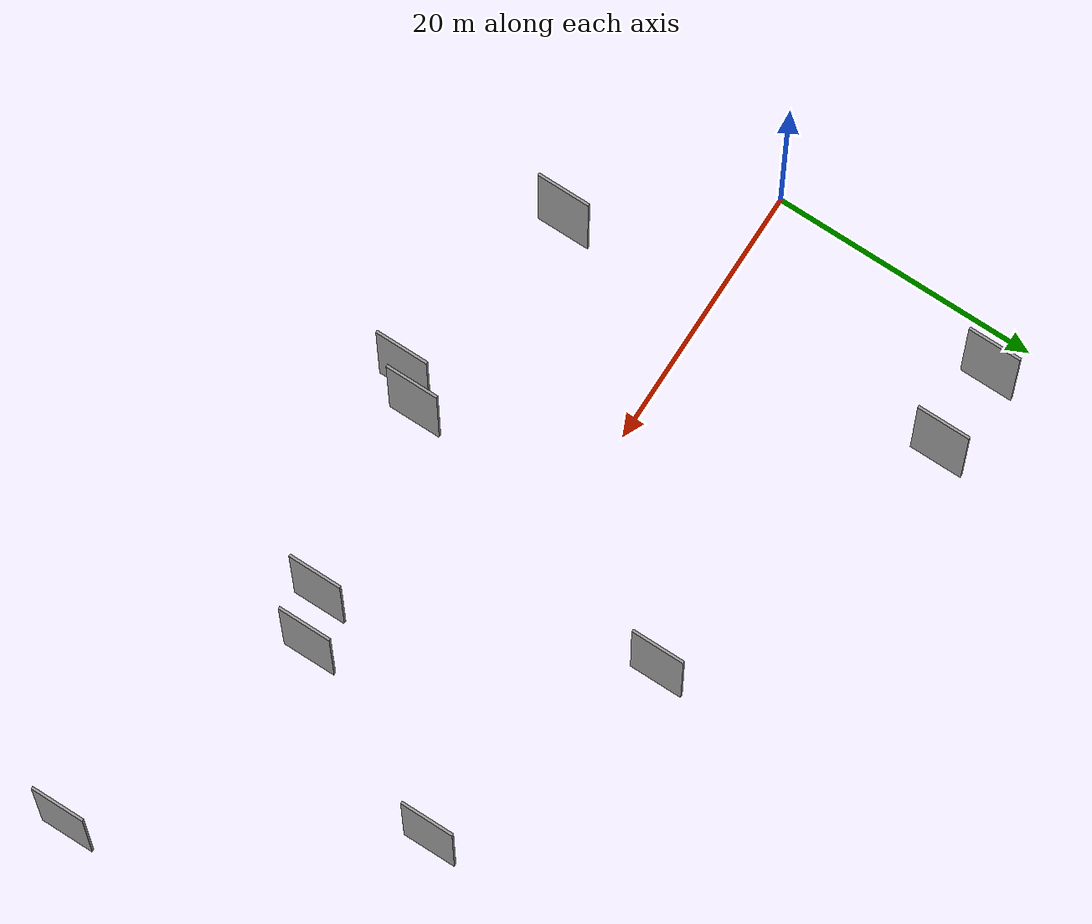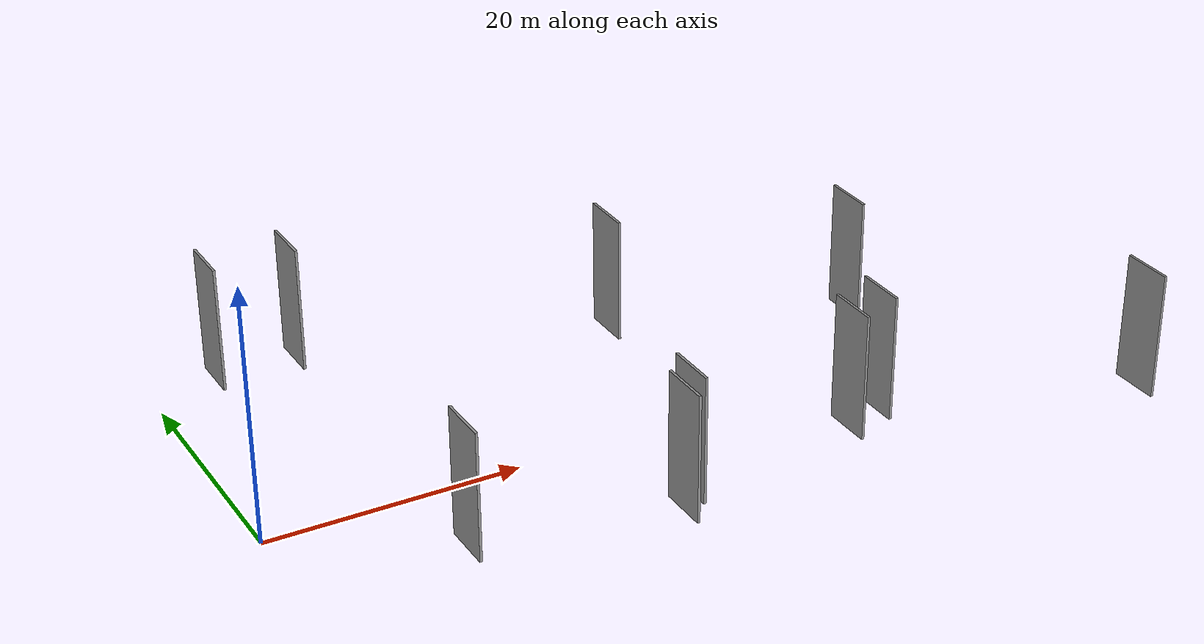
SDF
<sdf version="1.6">
 <world name="default">
  <scene>
   <sky><clouds><speed>12</speed></clouds></sky>
   <ambient>0.4 0.4 0.4 1</ambient>
   <background>0.7 0.7 0.7 1</background>
   <shadows>1</shadows>
  </scene>
  <gravity>0 0 -9.8066</gravity>
  <magnetic_field>6e-06 2.3e-05 -4.2e-05</magnetic_field>
  <physics default="0" name="default_physics" type="ode">
   <ode>
    <solver>
     <type>quick</type>
     <iters>10</iters>
     <sor>1.0</sor>
     <use_dynamic_moi_rescaling>0</use_dynamic_moi_rescaling>
    </solver>
    <constraints>
     <cfm>0</cfm>
     <erp>0.2</erp>
     <contact_max_correcting_vel>100</contact_max_correcting_vel>
     <contact_surface_layer>0.001</contact_surface_layer>
    </constraints>
   </ode>
   <max_step_size>0.004</max_step_size>
   <real_time_factor>1</real_time_factor>
   <real_time_update_rate>250</real_time_update_rate>
  </physics>
  <light name="sun" type="directional">
   <pose>0 0 10 0 0 0</pose>
   <diffuse>0.8 0.8 0.8 1</diffuse>
   <specular>0.2 0.2 0.2 1</specular>
   <attenuation>
    <range>1000</range>
    <constant>0.9</constant>
    <linear>0.01</linear>
    <quadratic>0.001</quadratic>
   </attenuation>
   <direction>-0.5 0.1 -0.9</direction>
  </light>
  <model name="grey_wall_1">
   <static>1</static>
   <pose>27.2210 -12.0549 2.5 0.000000 0.000000 1.570796</pose>
   <link name="link">
    <pose>0 0 5.00 0 0 0</pose>
    <collision name="collision"><geometry><box><size>4.00 0.2 10.00</size></box></geometry></collision>
    <visual name="visual">
     <cast_shadows>0</cast_shadows>
     <geometry><box><size>4.00 0.2 10.00</size></box></geometry>
     <material>
      <script>
       <uri>model://grey_wall/materials/scripts</uri>
       <uri>model://grey_wall/materials/textures</uri>
       <name>vrc/grey_wall</name>
      </script>
     </material>
    </visual>
   </link>
  </model>
  <model name="grey_wall_2">
   <static>1</static>
   <pose>63.5812 -15.7673 2.5 0.000000 0.000000 1.570796</pose>
   <link name="link">
    <pose>0 0 5.00 0 0 0</pose>
    <collision name="collision"><geometry><box><size>4.00 0.2 10.00</size></box></geometry></collision>
    <visual name="visual">
     <cast_shadows>0</cast_shadows>
     <geometry><box><size>4.00 0.2 10.00</size></box></geometry>
     <material>
      <script>
       <uri>model://grey_wall/materials/scripts</uri>
       <uri>model://grey_wall/materials/textures</uri>
       <name>vrc/grey_wall</name>
      </script>
     </material>
    </visual>
   </link>
  </model>
  <model name="grey_wall_3">
   <static>1</static>
   <pose>41.4807 -10.3059 2.5 0.000000 0.000000 1.570796</pose>
   <link name="link">
    <pose>0 0 5.00 0 0 0</pose>
    <collision name="collision"><geometry><box><size>4.00 0.2 10.00</size></box></geometry></collision>
    <visual name="visual">
     <cast_shadows>0</cast_shadows>
     <geometry><box><size>4.00 0.2 10.00</size></box></geometry>
     <material>
      <script>
       <uri>model://grey_wall/materials/scripts</uri>
       <uri>model://grey_wall/materials/textures</uri>
       <name>vrc/grey_wall</name>
      </script>
     </material>
    </visual>
   </link>
  </model>
  <model name="grey_wall_4">
   <static>1</static>
   <pose>51.3223 4.9389 2.5 0.000000 0.000000 1.570796</pose>
   <link name="link">
    <pose>0 0 5.00 0 0 0</pose>
    <collision name="collision"><geometry><box><size>4.00 0.2 10.00</size></box></geometry></collision>
    <visual name="visual">
     <cast_shadows>0</cast_shadows>
     <geometry><box><size>4.00 0.2 10.00</size></box></geometry>
     <material>
      <script>
       <uri>model://grey_wall/materials/scripts</uri>
       <uri>model://grey_wall/materials/textures</uri>
       <name>vrc/grey_wall</name>
      </script>
     </material>
    </visual>
   </link>
  </model>
  <model name="grey_wall_5">
   <static>1</static>
   <pose>33.4902 11.3314 2.5 0.000000 0.000000 1.570796</pose>
   <link name="link">
    <pose>0 0 5.00 0 0 0</pose>
    <collision name="collision"><geometry><box><size>4.00 0.2 10.00</size></box></geometry></collision>
    <visual name="visual">
     <cast_shadows>0</cast_shadows>
     <geometry><box><size>4.00 0.2 10.00</size></box></geometry>
     <material>
      <script>
       <uri>model://grey_wall/materials/scripts</uri>
       <uri>model://grey_wall/materials/textures</uri>
       <name>vrc/grey_wall</name>
      </script>
     </material>
    </visual>
   </link>
  </model>
  <model name="grey_wall_6">
   <static>1</static>
   <pose>25.6247 -13.9128 2.5 0.000000 0.000000 1.570796</pose>
   <link name="link">
    <pose>0 0 5.00 0 0 0</pose>
    <collision name="collision"><geometry><box><size>4.00 0.2 10.00</size></box></geometry></collision>
    <visual name="visual">
     <cast_shadows>0</cast_shadows>
     <geometry><box><size>4.00 0.2 10.00</size></box></geometry>
     <material>
      <script>
       <uri>model://grey_wall/materials/scripts</uri>
       <uri>model://grey_wall/materials/textures</uri>
       <name>vrc/grey_wall</name>
      </script>
     </material>
    </visual>
   </link>
  </model>
  <model name="grey_wall_7">
   <static>1</static>
   <pose>44.8037 -8.9367 2.5 0.000000 0.000000 1.570796</pose>
   <link name="link">
    <pose>0 0 5.00 0 0 0</pose>
    <collision name="collision"><geometry><box><size>4.00 0.2 10.00</size></box></geometry></collision>
    <visual name="visual">
     <cast_shadows>0</cast_shadows>
     <geometry><box><size>4.00 0.2 10.00</size></box></geometry>
     <material>
      <script>
       <uri>model://grey_wall/materials/scripts</uri>
       <uri>model://grey_wall/materials/textures</uri>
       <name>vrc/grey_wall</name>
      </script>
     </material>
    </visual>
   </link>
  </model>
  <model name="grey_wall_8">
   <static>1</static>
   <pose>4.0702 18.9213 2.5 0.000000 0.000000 1.570796</pose>
   <link name="link">
    <pose>0 0 5.00 0 0 0</pose>
    <collision name="collision"><geometry><box><size>4.00 0.2 10.00</size></box></geometry></collision>
    <visual name="visual">
     <cast_shadows>0</cast_shadows>
     <geometry><box><size>4.00 0.2 10.00</size></box></geometry>
     <material>
      <script>
       <uri>model://grey_wall/materials/scripts</uri>
       <uri>model://grey_wall/materials/textures</uri>
       <name>vrc/grey_wall</name>
      </script>
     </material>
    </visual>
   </link>
  </model>
  <model name="grey_wall_9">
   <static>1</static>
   <pose>10.6568 -10.8507 2.5 0.000000 0.000000 1.570796</pose>
   <link name="link">
    <pose>0 0 5.00 0 0 0</pose>
    <collision name="collision"><geometry><box><size>4.00 0.2 10.00</size></box></geometry></collision>
    <visual name="visual">
     <cast_shadows>0</cast_shadows>
     <geometry><box><size>4.00 0.2 10.00</size></box></geometry>
     <material>
      <script>
       <uri>model://grey_wall/materials/scripts</uri>
       <uri>model://grey_wall/materials/textures</uri>
       <name>vrc/grey_wall</name>
      </script>
     </material>
    </visual>
   </link>
  </model>
  <model name="grey_wall_10">
   <static>1</static>
   <pose>10.4678 18.9396 2.5 0.000000 0.000000 1.570796</pose>
   <link name="link">
    <pose>0 0 5.00 0 0 0</pose>
    <collision name="collision"><geometry><box><size>4.00 0.2 10.00</size></box></geometry></collision>
    <visual name="visual">
     <cast_shadows>0</cast_shadows>
     <geometry><box><size>4.00 0.2 10.00</size></box></geometry>
     <material>
      <script>
       <uri>model://grey_wall/materials/scripts</uri>
       <uri>model://grey_wall/materials/textures</uri>
       <name>vrc/grey_wall</name>
      </script>
     </material>
    </visual>
   </link>
  </model>
 </world>
</sdf>
